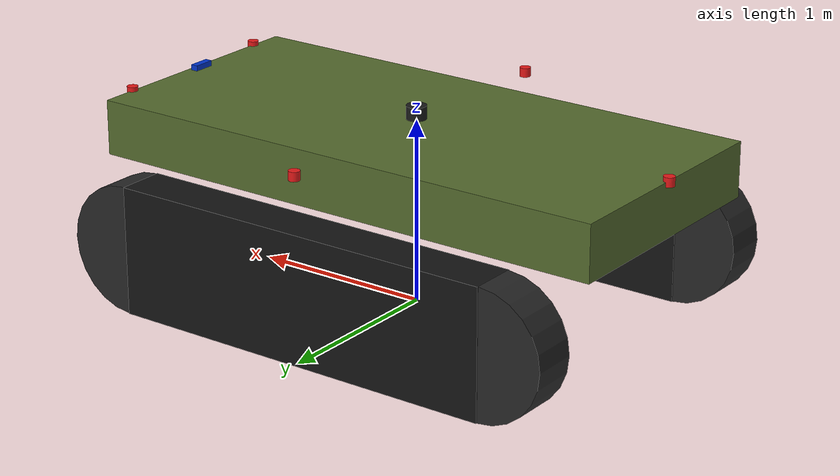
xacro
<?xml version="1.0"?>
<robot xmlns:xacro="http://www.ros.org/wiki/xacro" name="tracked_rover">

  <!-- ==================== Properties ==================== -->
  <xacro:property name="PI" value="3.14159265359"/>

  <xacro:property name="chassis_length" value="3.0"/>
  <xacro:property name="chassis_width"  value="2.0"/>
  <xacro:property name="chassis_height" value="0.3"/>
  <xacro:property name="chassis_mass"   value="150.0"/>

  <xacro:property name="wheel_radius"     value="0.35"/>
  <xacro:property name="wheel_width"      value="0.25"/>
  <xacro:property name="wheel_mass"       value="8.0"/>
  <xacro:property name="wheel_separation" value="1.8"/>
  <xacro:property name="wheelbase"        value="2.2"/>

  <!-- ==================== Inertia Macros ==================== -->
  <xacro:macro name="box_inertia" params="m x y z">
    <inertial>
      <mass value="${m}"/>
      <inertia ixx="${(m/12.0)*(y*y+z*z)}" ixy="0" ixz="0"
               iyy="${(m/12.0)*(x*x+z*z)}" iyz="0"
               izz="${(m/12.0)*(x*x+y*y)}"/>
    </inertial>
  </xacro:macro>

  <xacro:macro name="cylinder_inertia" params="m r h">
    <inertial>
      <mass value="${m}"/>
      <inertia ixx="${(m/12.0)*(3*r*r+h*h)}" ixy="0" ixz="0"
               iyy="${(m/12.0)*(3*r*r+h*h)}" iyz="0"
               izz="${(m/2.0)*r*r}"/>
    </inertial>
  </xacro:macro>

  <!-- ==================== Wheel Macro ==================== -->
  <xacro:macro name="wheel" params="prefix x_reflect y_reflect">
    <link name="${prefix}_wheel_link">
      <visual>
        <geometry>
          <cylinder radius="${wheel_radius}" length="${wheel_width}"/>
        </geometry>
        <material name="dark_grey">
          <color rgba="0.15 0.15 0.15 1.0"/>
        </material>
      </visual>
      <collision>
        <geometry>
          <cylinder radius="${wheel_radius}" length="${wheel_width}"/>
        </geometry>
      </collision>
      <xacro:cylinder_inertia m="${wheel_mass}" r="${wheel_radius}" h="${wheel_width}"/>
    </link>

    <joint name="${prefix}_wheel_joint" type="continuous">
      <parent link="base_link"/>
      <child link="${prefix}_wheel_link"/>
      <origin xyz="${x_reflect * wheelbase/2} ${y_reflect * wheel_separation/2} ${-(wheel_radius + chassis_height / 2)}"
              rpy="${-PI/2} 0 0"/>
      <axis xyz="0 0 1"/>
      <dynamics damping="0.1" friction="0.1"/>
    </joint>

    <gazebo reference="${prefix}_wheel_link">
      <mu1>3.0</mu1>
      <mu2>0.5</mu2>
      <fdir1>1 0 0</fdir1>
      <kp>1000000.0</kp>
      <kd>100.0</kd>
      <minDepth>0.003</minDepth>
      <maxVel>1.0</maxVel>
      <material>Gazebo/DarkGrey</material>
    </gazebo>
  </xacro:macro>

  <!-- ==================== Track Assembly Macro ==================== -->
  <xacro:macro name="track_assembly" params="side y_reflect">
    <link name="${side}_track_link">
      <visual>
        <geometry>
          <box size="${wheelbase} ${wheel_width + 0.01} ${wheel_radius * 2}"/>
        </geometry>
        <material name="track_color">
          <color rgba="0.08 0.08 0.08 1.0"/>
        </material>
      </visual>
      <inertial>
        <mass value="0.01"/>
        <inertia ixx="0.0001" ixy="0" ixz="0" iyy="0.0001" iyz="0" izz="0.0001"/>
      </inertial>
    </link>
    <joint name="${side}_track_joint" type="fixed">
      <parent link="base_link"/>
      <child link="${side}_track_link"/>
      <origin xyz="0 ${y_reflect * wheel_separation / 2} ${-(wheel_radius + chassis_height / 2)}" rpy="0 0 0"/>
    </joint>
    <gazebo reference="${side}_track_link">
      <material>Gazebo/FlatBlack</material>
    </gazebo>
  </xacro:macro>

  <!-- ==================== Robot Base ==================== -->
  <link name="base_footprint">
    <inertial>
      <mass value="0.0001"/>
      <inertia ixx="0.0001" ixy="0" ixz="0" iyy="0.0001" iyz="0" izz="0.0001"/>
    </inertial>
  </link>

  <link name="base_link">
    <visual>
      <geometry>
        <box size="${chassis_length} ${chassis_width - wheel_width*2 - 0.1} ${chassis_height}"/>
      </geometry>
      <material name="olive_green">
        <color rgba="0.33 0.42 0.18 1.0"/>
      </material>
    </visual>
    <collision>
      <geometry>
        <box size="${chassis_length} ${chassis_width} ${chassis_height}"/>
      </geometry>
    </collision>
    <xacro:box_inertia m="${chassis_mass}" x="${chassis_length}" y="${chassis_width}" z="${chassis_height}"/>
  </link>

  <joint name="base_footprint_joint" type="fixed">
    <parent link="base_footprint"/>
    <child link="base_link"/>
    <origin xyz="0 0 ${wheel_radius * 2 + chassis_height / 2}" rpy="0 0 0"/>
  </joint>

  <gazebo reference="base_link">
    <material>Gazebo/DarkGrey</material>
  </gazebo>

  <!-- ==================== Wheels ==================== -->
  <xacro:wheel prefix="front_left"  x_reflect="1"  y_reflect="1"/>
  <xacro:wheel prefix="front_right" x_reflect="1"  y_reflect="-1"/>
  <xacro:wheel prefix="rear_left"   x_reflect="-1" y_reflect="1"/>
  <xacro:wheel prefix="rear_right"  x_reflect="-1" y_reflect="-1"/>

  <!-- ==================== Track Assemblies ==================== -->
  <xacro:track_assembly side="left"  y_reflect="1"/>
  <xacro:track_assembly side="right" y_reflect="-1"/>

  <!-- ==================== Sensors ==================== -->

  <!-- 3D LiDAR (Velodyne VLP-16 style) -->
  <link name="lidar_link">
    <visual>
      <geometry>
        <cylinder radius="0.055" length="0.072"/>
      </geometry>
      <material name="lidar_black">
        <color rgba="0.1 0.1 0.1 1.0"/>
      </material>
    </visual>
    <collision>
      <geometry>
        <cylinder radius="0.055" length="0.072"/>
      </geometry>
    </collision>
    <inertial>
      <mass value="0.83"/>
      <inertia ixx="0.000908" ixy="0" ixz="0" iyy="0.000908" iyz="0" izz="0.001256"/>
    </inertial>
  </link>

  <joint name="lidar_joint" type="fixed">
    <parent link="base_link"/>
    <child link="lidar_link"/>
    <origin xyz="0 0 ${chassis_height/2 + 0.072/2 + 0.01}" rpy="0 0 0"/>
  </joint>

  <gazebo reference="lidar_link">
    <material>Gazebo/Black</material>
    <sensor type="ray" name="velodyne_lidar">
      <pose>0 0 0 0 0 0</pose>
      <visualize>false</visualize>
      <update_rate>10</update_rate>
      <ray>
        <scan>
          <horizontal>
            <samples>360</samples>
            <resolution>1</resolution>
            <min_angle>${-PI}</min_angle>
            <max_angle>${PI}</max_angle>
          </horizontal>
          <vertical>
            <samples>16</samples>
            <resolution>1</resolution>
            <min_angle>${-15.0*PI/180.0}</min_angle>
            <max_angle>${15.0*PI/180.0}</max_angle>
          </vertical>
        </scan>
        <range>
          <min>2.0</min>
          <max>100.0</max>
          <resolution>0.01</resolution>
        </range>
        <noise>
          <type>gaussian</type>
          <mean>0.0</mean>
          <stddev>0.005</stddev>
        </noise>
      </ray>
      <plugin name="gazebo_ros_lidar" filename="libgazebo_ros_ray_sensor.so">
        <ros>
          <remapping>~/out:=velodyne_points</remapping>
        </ros>
        <output_type>sensor_msgs/PointCloud2</output_type>
        <frame_name>lidar_link</frame_name>
      </plugin>
    </sensor>
  </gazebo>

  <!-- ==================== 3D LiDAR Sensors (local path planning) ==================== -->
  <!--
    5个3D激光雷达，发布PointCloud2，用于局部路径规划的障碍物检测
    命名：lidar_1(后)、lidar_2(左)、lidar_3(前左)、lidar_4(前右)、lidar_5(右)
    每个雷达水平扫描180°(±90°)、垂直扫描±15°，仅覆盖其朝向方向
    朝向：机器人 +X 为前方
  -->
  <xacro:macro name="lidar_3d_fov" params="prefix x y z yaw">
    <link name="${prefix}_link">
      <visual>
        <geometry>
          <cylinder radius="0.03" length="0.05"/>
        </geometry>
        <material name="${prefix}_color">
          <color rgba="0.9 0.1 0.1 1.0"/>
        </material>
      </visual>
      <collision>
        <geometry>
          <cylinder radius="0.03" length="0.05"/>
        </geometry>
      </collision>
      <inertial>
        <mass value="0.05"/>
        <inertia ixx="0.00001" ixy="0" ixz="0" iyy="0.00001" iyz="0" izz="0.00001"/>
      </inertial>
    </link>

    <joint name="${prefix}_joint" type="fixed">
      <parent link="base_link"/>
      <child link="${prefix}_link"/>
      <origin xyz="${x} ${y} ${z}" rpy="0 0 ${yaw}"/>
    </joint>

    <gazebo reference="${prefix}_link">
      <material>Gazebo/Red</material>
      <sensor type="ray" name="${prefix}_sensor">
        <pose>0 0 0 0 0 0</pose>
        <visualize>false</visualize>
        <update_rate>10</update_rate>
        <ray>
          <scan>
            <horizontal>
              <samples>180</samples>
              <resolution>1</resolution>
              <min_angle>${-PI/2}</min_angle>
              <max_angle>${PI/2}</max_angle>
            </horizontal>
            <vertical>
              <samples>8</samples>
              <resolution>1</resolution>
              <min_angle>${-15.0*PI/180.0}</min_angle>
              <max_angle>${15.0*PI/180.0}</max_angle>
            </vertical>
          </scan>
          <range>
            <min>0.1</min>
            <max>30.0</max>
            <resolution>0.01</resolution>
          </range>
          <noise>
            <type>gaussian</type>
            <mean>0.0</mean>
            <stddev>0.005</stddev>
          </noise>
        </ray>
        <plugin name="${prefix}_plugin" filename="libgazebo_ros_ray_sensor.so">
          <ros>
            <remapping>~/out:=${prefix}/points</remapping>
          </ros>
          <output_type>sensor_msgs/PointCloud2</output_type>
          <frame_name>${prefix}_link</frame_name>
        </plugin>
      </sensor>
    </gazebo>
  </xacro:macro>

  <!-- lidar_1: 后, 朝向:后方(-X), 水平180°覆盖后方 -->
  <xacro:lidar_3d_fov prefix="lidar_1" x="${-chassis_length/2}" y="0" z="${chassis_height/2}" yaw="${PI}"/>

  <!-- lidar_2: 左, 朝向:左侧(+Y), 水平180°覆盖左侧 -->
  <xacro:lidar_3d_fov prefix="lidar_2" x="0" y="${chassis_width/2}" z="${chassis_height/2}" yaw="${PI/2}"/>

  <!-- lidar_3: 前左, 朝向:前左(45°), 水平180°覆盖前方偏左区域 -->
  <xacro:lidar_3d_fov prefix="lidar_3" x="${chassis_length/2}" y="${chassis_width/4}" z="${chassis_height/2}" yaw="${PI/4}"/>

  <!-- lidar_4: 前右, 朝向:前右(-45°), 水平180°覆盖前方偏右区域 -->
  <xacro:lidar_3d_fov prefix="lidar_4" x="${chassis_length/2}" y="${-chassis_width/4}" z="${chassis_height/2}" yaw="${-PI/4}"/>

  <!-- lidar_5: 右, 朝向:右侧(-Y), 水平180°覆盖右侧 -->
  <xacro:lidar_3d_fov prefix="lidar_5" x="0" y="${-chassis_width/2}" z="${chassis_height/2}" yaw="${-PI/2}"/>

  <!-- IMU -->
  <link name="imu_link">
    <inertial>
      <mass value="0.1"/>
      <inertia ixx="0.0001" ixy="0" ixz="0" iyy="0.0001" iyz="0" izz="0.0001"/>
    </inertial>
  </link>

  <joint name="imu_joint" type="fixed">
    <parent link="base_link"/>
    <child link="imu_link"/>
    <origin xyz="0 0 0" rpy="0 0 0"/>
  </joint>

  <gazebo reference="imu_link">
    <sensor type="imu" name="imu_sensor">
      <always_on>true</always_on>
      <update_rate>100</update_rate>
      <plugin name="imu_plugin" filename="libgazebo_ros_imu_sensor.so">
        <ros>
          <remapping>~/out:=imu/data</remapping>
        </ros>
        <frame_name>imu_link</frame_name>
        <initial_orientation_as_reference>false</initial_orientation_as_reference>
      </plugin>
    </sensor>
  </gazebo>

  <!-- RGB-D Camera (for RTAB-Map visual SLAM) -->
  <link name="camera_link">
    <visual>
      <geometry>
        <box size="0.04 0.12 0.03"/>
      </geometry>
      <material name="camera_blue">
        <color rgba="0.0 0.2 0.8 1.0"/>
      </material>
    </visual>
    <collision>
      <geometry>
        <box size="0.04 0.12 0.03"/>
      </geometry>
    </collision>
    <inertial>
      <mass value="0.2"/>
      <inertia ixx="0.0001" ixy="0" ixz="0" iyy="0.0001" iyz="0" izz="0.0001"/>
    </inertial>
  </link>

  <joint name="camera_joint" type="fixed">
    <parent link="base_link"/>
    <child link="camera_link"/>
    <origin xyz="${chassis_length/2 - 0.05} 0 ${chassis_height/2 + 0.02}" rpy="0 0 0"/>
  </joint>

  <link name="camera_depth_optical_frame"/>
  <joint name="camera_optical_joint" type="fixed">
    <parent link="camera_link"/>
    <child link="camera_depth_optical_frame"/>
    <origin xyz="0 0 0" rpy="${-PI/2} 0 ${-PI/2}"/>
  </joint>

  <gazebo reference="camera_link">
    <material>Gazebo/Blue</material>
    <sensor type="depth" name="camera">
      <update_rate>15</update_rate>
      <camera>
        <horizontal_fov>1.047</horizontal_fov>
        <image>
          <width>640</width>
          <height>480</height>
          <format>R8G8B8</format>
        </image>
        <clip>
          <near>0.1</near>
          <far>10.0</far>
        </clip>
      </camera>
      <plugin name="depth_camera_plugin" filename="libgazebo_ros_camera.so">
        <frame_name>camera_depth_optical_frame</frame_name>
        <min_depth>0.1</min_depth>
        <max_depth>10.0</max_depth>
      </plugin>
    </sensor>
  </gazebo>

  <!-- ==================== ros2_control ==================== -->
  <ros2_control name="GazeboSimSystem" type="system">
    <hardware>
      <plugin>gazebo_ros2_control/GazeboSystem</plugin>
    </hardware>
    <joint name="front_left_wheel_joint">
      <command_interface name="velocity"/>
      <state_interface name="position"/>
      <state_interface name="velocity"/>
    </joint>
    <joint name="front_right_wheel_joint">
      <command_interface name="velocity"/>
      <state_interface name="position"/>
      <state_interface name="velocity"/>
    </joint>
    <joint name="rear_left_wheel_joint">
      <command_interface name="velocity"/>
      <state_interface name="position"/>
      <state_interface name="velocity"/>
    </joint>
    <joint name="rear_right_wheel_joint">
      <command_interface name="velocity"/>
      <state_interface name="position"/>
      <state_interface name="velocity"/>
    </joint>
  </ros2_control>

  <gazebo>
    <plugin filename="libgazebo_ros2_control.so" name="gazebo_ros2_control">
      <parameters>$(find robot_description)/config/controllers.yaml</parameters>
      <ros>
        <remapping>/diff_drive_controller/cmd_vel_unstamped:=/cmd_vel</remapping>
        <!-- diff_drive 的 odom 改发到 /diff_drive_odom，/odom 由 true_position 发布真实 3D 位姿 -->
        <remapping>/diff_drive_controller/odom:=/diff_drive_odom</remapping>
      </ros>
    </plugin>
    <plugin name="p3d_base_controller" filename="libgazebo_ros_p3d.so">
      <ros>
        <remapping>odom:=/odom</remapping>
      </ros>
      <body_name>base_footprint</body_name>
      <frame_name>odom</frame_name>
      <update_rate>50.0</update_rate>
      <xyz_offset>0 0 0</xyz_offset>
      <rpy_offset>0 0 0</rpy_offset>
      <gaussian_noise>0.001</gaussian_noise>
    </plugin>
  </gazebo>

</robot>
